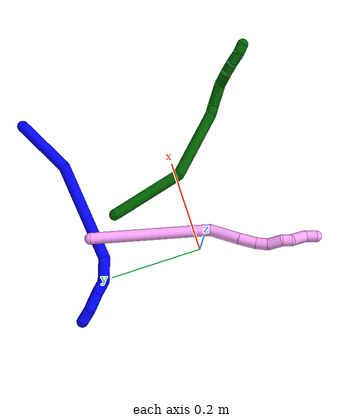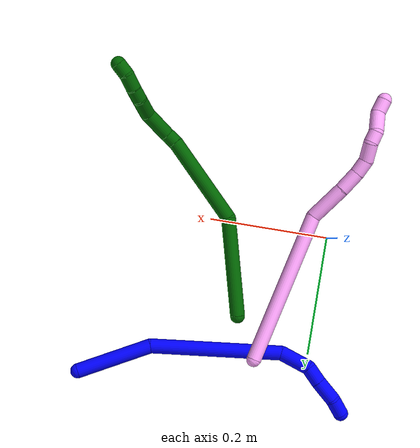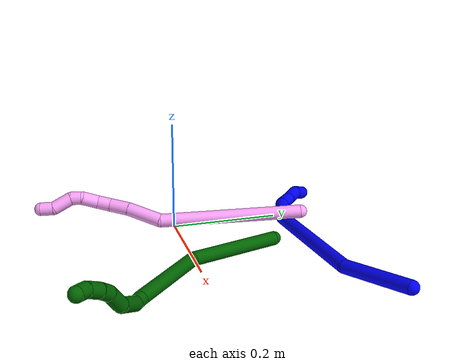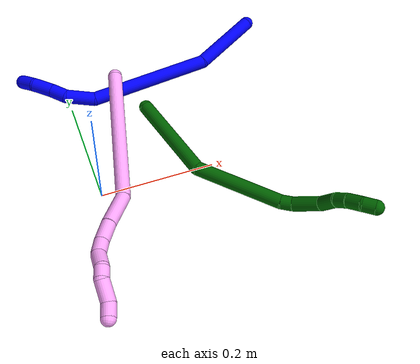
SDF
<sdf version="1.7">
 <world name="default">
  <model name="1">
   <static>0</static>
   <link name="1">
    <collision name="collision-cylinder-e_1_1_4">
     <pose>0.015218 0.031046 0.054394 -0.518642 0.238366 -0.063517</pose>
     <geometry><cylinder><radius>0.0125</radius><length>0.128906</length></cylinder></geometry>
     <surface>
      <friction><ode><mu>1.16</mu><mu2>1.16</mu2><slip1>0</slip1><slip2>0</slip2></ode></friction>
      <contact><ode><kp>1e+06</kp><kd>1</kd><max_vel>0</max_vel><min_depth>0.001</min_depth></ode></contact>
     </surface>
    </collision>
    <visual name="visual-cylinder-e_1_1_4">
     <pose>0.015218 0.031046 0.054394 -0.518642 0.238366 -0.063517</pose>
     <geometry><cylinder><radius>0.0125</radius><length>0.128906</length></cylinder></geometry>
     <material><ambient>0 0 1 1</ambient></material>
    </visual>
    <collision name="collision-cylinder-e_2_4_5">
     <pose>0.034486 0.145693 0.181598 -0.854282 0.036511 -0.01662</pose>
     <geometry><cylinder><radius>0.0125</radius><length>0.221871</length></cylinder></geometry>
     <surface>
      <friction><ode><mu>1.16</mu><mu2>1.16</mu2><slip1>0</slip1><slip2>0</slip2></ode></friction>
      <contact><ode><kp>1e+06</kp><kd>1</kd><max_vel>0</max_vel><min_depth>0.001</min_depth></ode></contact>
     </surface>
    </collision>
    <visual name="visual-cylinder-e_2_4_5">
     <pose>0.034486 0.145693 0.181598 -0.854282 0.036511 -0.01662</pose>
     <geometry><cylinder><radius>0.0125</radius><length>0.221871</length></cylinder></geometry>
     <material><ambient>0 0 1 1</ambient></material>
    </visual>
    <collision name="collision-cylinder-e_3_5_6">
     <pose>0.034801 0.254034 0.261956 -1.27466 -0.14337 0.106234</pose>
     <geometry><cylinder><radius>0.0125</radius><length>0.052269</length></cylinder></geometry>
     <surface>
      <friction><ode><mu>1.16</mu><mu2>1.16</mu2><slip1>0</slip1><slip2>0</slip2></ode></friction>
      <contact><ode><kp>1e+06</kp><kd>1</kd><max_vel>0</max_vel><min_depth>0.001</min_depth></ode></contact>
     </surface>
    </collision>
    <visual name="visual-cylinder-e_3_5_6">
     <pose>0.034801 0.254034 0.261956 -1.27466 -0.14337 0.106234</pose>
     <geometry><cylinder><radius>0.0125</radius><length>0.052269</length></cylinder></geometry>
     <material><ambient>0 0 1 1</ambient></material>
    </visual>
    <collision name="collision-cylinder-e_4_6_7">
     <pose>0.023458 0.291323 0.26916 -1.59819 -0.544969 0.559339</pose>
     <geometry><cylinder><radius>0.0125</radius><length>0.029359</length></cylinder></geometry>
     <surface>
      <friction><ode><mu>1.16</mu><mu2>1.16</mu2><slip1>0</slip1><slip2>0</slip2></ode></friction>
      <contact><ode><kp>1e+06</kp><kd>1</kd><max_vel>0</max_vel><min_depth>0.001</min_depth></ode></contact>
     </surface>
    </collision>
    <visual name="visual-cylinder-e_4_6_7">
     <pose>0.023458 0.291323 0.26916 -1.59819 -0.544969 0.559339</pose>
     <geometry><cylinder><radius>0.0125</radius><length>0.029359</length></cylinder></geometry>
     <material><ambient>0 0 1 1</ambient></material>
    </visual>
    <collision name="collision-cylinder-e_5_7_8">
     <pose>0.006668 0.320493 0.269751 -1.51465 -0.503941 0.477472</pose>
     <geometry><cylinder><radius>0.0125</radius><length>0.038024</length></cylinder></geometry>
     <surface>
      <friction><ode><mu>1.16</mu><mu2>1.16</mu2><slip1>0</slip1><slip2>0</slip2></ode></friction>
      <contact><ode><kp>1e+06</kp><kd>1</kd><max_vel>0</max_vel><min_depth>0.001</min_depth></ode></contact>
     </surface>
    </collision>
    <visual name="visual-cylinder-e_5_7_8">
     <pose>0.006668 0.320493 0.269751 -1.51465 -0.503941 0.477472</pose>
     <geometry><cylinder><radius>0.0125</radius><length>0.038024</length></cylinder></geometry>
     <material><ambient>0 0 1 1</ambient></material>
    </visual>
    <collision name="collision-cylinder-e_6_8_2">
     <pose>-0.013778 0.34661 0.271936 -1.43979 -0.866258 0.770446</pose>
     <geometry><cylinder><radius>0.0125</radius><length>0.029572</length></cylinder></geometry>
     <surface>
      <friction><ode><mu>1.16</mu><mu2>1.16</mu2><slip1>0</slip1><slip2>0</slip2></ode></friction>
      <contact><ode><kp>1e+06</kp><kd>1</kd><max_vel>0</max_vel><min_depth>0.001</min_depth></ode></contact>
     </surface>
    </collision>
    <visual name="visual-cylinder-e_6_8_2">
     <pose>-0.013778 0.34661 0.271936 -1.43979 -0.866258 0.770446</pose>
     <geometry><cylinder><radius>0.0125</radius><length>0.029572</length></cylinder></geometry>
     <material><ambient>0 0 1 1</ambient></material>
    </visual>
    <collision name="collision-sphere-2">
     <pose>-0.025044 0.356104 0.273187 0 -0 0</pose>
     <geometry><sphere><radius>0.0125</radius></sphere></geometry>
     <surface>
      <friction><ode><mu>1.16</mu><mu2>1.16</mu2><slip1>0</slip1><slip2>0</slip2></ode></friction>
      <contact><ode><kp>1e+06</kp><kd>1</kd><max_vel>0</max_vel><min_depth>0.001</min_depth></ode></contact>
     </surface>
    </collision>
    <visual name="visual-sphere-2">
     <pose>-0.025044 0.356104 0.273187 0 -0 0</pose>
     <geometry><sphere><radius>0.0125</radius></sphere></geometry>
     <material><ambient>0 0 1 1</ambient></material>
    </visual>
    <collision name="collision-sphere-4">
     <pose>0.030437 0.062092 0.108788 0 -0 0</pose>
     <geometry><sphere><radius>0.0125</radius></sphere></geometry>
     <surface>
      <friction><ode><mu>1.16</mu><mu2>1.16</mu2><slip1>0</slip1><slip2>0</slip2></ode></friction>
      <contact><ode><kp>1e+06</kp><kd>1</kd><max_vel>0</max_vel><min_depth>0.001</min_depth></ode></contact>
     </surface>
    </collision>
    <visual name="visual-sphere-4">
     <pose>0.030437 0.062092 0.108788 0 -0 0</pose>
     <geometry><sphere><radius>0.0125</radius></sphere></geometry>
     <material><ambient>0 0 1 1</ambient></material>
    </visual>
    <collision name="collision-sphere-1">
     <geometry><sphere><radius>0.0125</radius></sphere></geometry>
     <surface>
      <friction><ode><mu>1.16</mu><mu2>1.16</mu2><slip1>0</slip1><slip2>0</slip2></ode></friction>
      <contact><ode><kp>1e+06</kp><kd>1</kd><max_vel>0</max_vel><min_depth>0.001</min_depth></ode></contact>
     </surface>
    </collision>
    <visual name="visual-sphere-1">
     <geometry><sphere><radius>0.0125</radius></sphere></geometry>
     <material><ambient>0 0 1 1</ambient></material>
    </visual>
    <collision name="collision-sphere-8">
     <pose>-0.002513 0.337115 0.270685 0 -0 0</pose>
     <geometry><sphere><radius>0.0125</radius></sphere></geometry>
     <surface>
      <friction><ode><mu>1.16</mu><mu2>1.16</mu2><slip1>0</slip1><slip2>0</slip2></ode></friction>
      <contact><ode><kp>1e+06</kp><kd>1</kd><max_vel>0</max_vel><min_depth>0.001</min_depth></ode></contact>
     </surface>
    </collision>
    <visual name="visual-sphere-8">
     <pose>-0.002513 0.337115 0.270685 0 -0 0</pose>
     <geometry><sphere><radius>0.0125</radius></sphere></geometry>
     <material><ambient>0 0 1 1</ambient></material>
    </visual>
    <collision name="collision-sphere-5">
     <pose>0.038536 0.229293 0.254407 0 -0 0</pose>
     <geometry><sphere><radius>0.0125</radius></sphere></geometry>
     <surface>
      <friction><ode><mu>1.16</mu><mu2>1.16</mu2><slip1>0</slip1><slip2>0</slip2></ode></friction>
      <contact><ode><kp>1e+06</kp><kd>1</kd><max_vel>0</max_vel><min_depth>0.001</min_depth></ode></contact>
     </surface>
    </collision>
    <visual name="visual-sphere-5">
     <pose>0.038536 0.229293 0.254407 0 -0 0</pose>
     <geometry><sphere><radius>0.0125</radius></sphere></geometry>
     <material><ambient>0 0 1 1</ambient></material>
    </visual>
    <collision name="collision-sphere-6">
     <pose>0.031067 0.278774 0.269504 0 -0 0</pose>
     <geometry><sphere><radius>0.0125</radius></sphere></geometry>
     <surface>
      <friction><ode><mu>1.16</mu><mu2>1.16</mu2><slip1>0</slip1><slip2>0</slip2></ode></friction>
      <contact><ode><kp>1e+06</kp><kd>1</kd><max_vel>0</max_vel><min_depth>0.001</min_depth></ode></contact>
     </surface>
    </collision>
    <visual name="visual-sphere-6">
     <pose>0.031067 0.278774 0.269504 0 -0 0</pose>
     <geometry><sphere><radius>0.0125</radius></sphere></geometry>
     <material><ambient>0 0 1 1</ambient></material>
    </visual>
    <collision name="collision-sphere-7">
     <pose>0.015848 0.303871 0.268817 0 -0 0</pose>
     <geometry><sphere><radius>0.0125</radius></sphere></geometry>
     <surface>
      <friction><ode><mu>1.16</mu><mu2>1.16</mu2><slip1>0</slip1><slip2>0</slip2></ode></friction>
      <contact><ode><kp>1e+06</kp><kd>1</kd><max_vel>0</max_vel><min_depth>0.001</min_depth></ode></contact>
     </surface>
    </collision>
    <visual name="visual-sphere-7">
     <pose>0.015848 0.303871 0.268817 0 -0 0</pose>
     <geometry><sphere><radius>0.0125</radius></sphere></geometry>
     <material><ambient>0 0 1 1</ambient></material>
    </visual>
    <inertial>
     <pose>0.023934 0.161188 0.174392 0 -0 0</pose>
     <mass>0.5</mass>
     <inertia>
      <ixx>0.001097</ixx>
      <ixy>0</ixy>
      <ixz>0</ixz>
      <iyy>0.000781</iyy>
      <iyz>0</iyz>
      <izz>-0.000851</izz>
     </inertia>
    </inertial>
   </link>
   <pose>0.378536 0.2885 0.022335 2.4616 -0.795562 -1.5135</pose>
  </model>
  <model name="4">
   <static>0</static>
   <link name="4">
    <collision name="collision-cylinder-e_1_1_4">
     <pose>-0.016249 -0.039205 -0.122234 2.83122 -0.125915 -0.766114</pose>
     <geometry><cylinder><radius>0.0125</radius><length>0.258783</length></cylinder></geometry>
     <surface>
      <friction><ode><mu>1.16</mu><mu2>1.16</mu2><slip1>0</slip1><slip2>0</slip2></ode></friction>
      <contact><ode><kp>1e+06</kp><kd>1</kd><max_vel>0</max_vel><min_depth>0.001</min_depth></ode></contact>
     </surface>
    </collision>
    <visual name="visual-cylinder-e_1_1_4">
     <pose>-0.016249 -0.039205 -0.122234 2.83122 -0.125915 -0.766114</pose>
     <geometry><cylinder><radius>0.0125</radius><length>0.258783</length></cylinder></geometry>
     <material><ambient>1 0.65098 0.996078 1</ambient></material>
    </visual>
    <collision name="collision-cylinder-e_2_4_5">
     <pose>-0.04977 -0.080146 -0.272494 3.07971 -0.551437 -2.92367</pose>
     <geometry><cylinder><radius>0.0125</radius><length>0.065932</length></cylinder></geometry>
     <surface>
      <friction><ode><mu>1.16</mu><mu2>1.16</mu2><slip1>0</slip1><slip2>0</slip2></ode></friction>
      <contact><ode><kp>1e+06</kp><kd>1</kd><max_vel>0</max_vel><min_depth>0.001</min_depth></ode></contact>
     </surface>
    </collision>
    <visual name="visual-cylinder-e_2_4_5">
     <pose>-0.04977 -0.080146 -0.272494 3.07971 -0.551437 -2.92367</pose>
     <geometry><cylinder><radius>0.0125</radius><length>0.065932</length></cylinder></geometry>
     <material><ambient>1 0.65098 0.996078 1</ambient></material>
    </visual>
    <collision name="collision-cylinder-e_3_5_6">
     <pose>-0.074666 -0.082962 -0.317145 3.07675 -0.429217 -2.84616</pose>
     <geometry><cylinder><radius>0.0125</radius><length>0.036644</length></cylinder></geometry>
     <surface>
      <friction><ode><mu>1.16</mu><mu2>1.16</mu2><slip1>0</slip1><slip2>0</slip2></ode></friction>
      <contact><ode><kp>1e+06</kp><kd>1</kd><max_vel>0</max_vel><min_depth>0.001</min_depth></ode></contact>
     </surface>
    </collision>
    <visual name="visual-cylinder-e_3_5_6">
     <pose>-0.074666 -0.082962 -0.317145 3.07675 -0.429217 -2.84616</pose>
     <geometry><cylinder><radius>0.0125</radius><length>0.036644</length></cylinder></geometry>
     <material><ambient>1 0.65098 0.996078 1</ambient></material>
    </visual>
    <collision name="collision-cylinder-e_4_6_7">
     <pose>-0.087673 -0.086709 -0.345297 2.91416 -0.426904 -2.17172</pose>
     <geometry><cylinder><radius>0.0125</radius><length>0.025997</length></cylinder></geometry>
     <surface>
      <friction><ode><mu>1.16</mu><mu2>1.16</mu2><slip1>0</slip1><slip2>0</slip2></ode></friction>
      <contact><ode><kp>1e+06</kp><kd>1</kd><max_vel>0</max_vel><min_depth>0.001</min_depth></ode></contact>
     </surface>
    </collision>
    <visual name="visual-cylinder-e_4_6_7">
     <pose>-0.087673 -0.086709 -0.345297 2.91416 -0.426904 -2.17172</pose>
     <geometry><cylinder><radius>0.0125</radius><length>0.025997</length></cylinder></geometry>
     <material><ambient>1 0.65098 0.996078 1</ambient></material>
    </visual>
    <collision name="collision-cylinder-e_5_7_8">
     <pose>-0.09884 -0.098396 -0.368182 2.4705 -0.379558 -1.00695</pose>
     <geometry><cylinder><radius>0.0125</radius><length>0.03123</length></cylinder></geometry>
     <surface>
      <friction><ode><mu>1.16</mu><mu2>1.16</mu2><slip1>0</slip1><slip2>0</slip2></ode></friction>
      <contact><ode><kp>1e+06</kp><kd>1</kd><max_vel>0</max_vel><min_depth>0.001</min_depth></ode></contact>
     </surface>
    </collision>
    <visual name="visual-cylinder-e_5_7_8">
     <pose>-0.09884 -0.098396 -0.368182 2.4705 -0.379558 -1.00695</pose>
     <geometry><cylinder><radius>0.0125</radius><length>0.03123</length></cylinder></geometry>
     <material><ambient>1 0.65098 0.996078 1</ambient></material>
    </visual>
    <collision name="collision-cylinder-e_6_8_9">
     <pose>-0.106285 -0.110076 -0.38904 2.86841 -0.166628 -1.09193</pose>
     <geometry><cylinder><radius>0.0125</radius><length>0.020008</length></cylinder></geometry>
     <surface>
      <friction><ode><mu>1.16</mu><mu2>1.16</mu2><slip1>0</slip1><slip2>0</slip2></ode></friction>
      <contact><ode><kp>1e+06</kp><kd>1</kd><max_vel>0</max_vel><min_depth>0.001</min_depth></ode></contact>
     </surface>
    </collision>
    <visual name="visual-cylinder-e_6_8_9">
     <pose>-0.106285 -0.110076 -0.38904 2.86841 -0.166628 -1.09193</pose>
     <geometry><cylinder><radius>0.0125</radius><length>0.020008</length></cylinder></geometry>
     <material><ambient>1 0.65098 0.996078 1</ambient></material>
    </visual>
    <collision name="collision-cylinder-e_7_9_10">
     <pose>-0.10175 -0.117936 -0.415166 2.8386 0.341631 1.69262</pose>
     <geometry><cylinder><radius>0.0125</radius><length>0.036977</length></cylinder></geometry>
     <surface>
      <friction><ode><mu>1.16</mu><mu2>1.16</mu2><slip1>0</slip1><slip2>0</slip2></ode></friction>
      <contact><ode><kp>1e+06</kp><kd>1</kd><max_vel>0</max_vel><min_depth>0.001</min_depth></ode></contact>
     </surface>
    </collision>
    <visual name="visual-cylinder-e_7_9_10">
     <pose>-0.10175 -0.117936 -0.415166 2.8386 0.341631 1.69262</pose>
     <geometry><cylinder><radius>0.0125</radius><length>0.036977</length></cylinder></geometry>
     <material><ambient>1 0.65098 0.996078 1</ambient></material>
    </visual>
    <collision name="collision-cylinder-e_8_10_2">
     <pose>-0.09719 -0.125971 -0.44356 2.90501 -0.134172 -1.02905</pose>
     <geometry><cylinder><radius>0.0125</radius><length>0.02443</length></cylinder></geometry>
     <surface>
      <friction><ode><mu>1.16</mu><mu2>1.16</mu2><slip1>0</slip1><slip2>0</slip2></ode></friction>
      <contact><ode><kp>1e+06</kp><kd>1</kd><max_vel>0</max_vel><min_depth>0.001</min_depth></ode></contact>
     </surface>
    </collision>
    <visual name="visual-cylinder-e_8_10_2">
     <pose>-0.09719 -0.125971 -0.44356 2.90501 -0.134172 -1.02905</pose>
     <geometry><cylinder><radius>0.0125</radius><length>0.02443</length></cylinder></geometry>
     <material><ambient>1 0.65098 0.996078 1</ambient></material>
    </visual>
    <collision name="collision-sphere-2">
     <pose>-0.098824 -0.128808 -0.455328 0 -0 0</pose>
     <geometry><sphere><radius>0.0125</radius></sphere></geometry>
     <surface>
      <friction><ode><mu>1.16</mu><mu2>1.16</mu2><slip1>0</slip1><slip2>0</slip2></ode></friction>
      <contact><ode><kp>1e+06</kp><kd>1</kd><max_vel>0</max_vel><min_depth>0.001</min_depth></ode></contact>
     </surface>
    </collision>
    <visual name="visual-sphere-2">
     <pose>-0.098824 -0.128808 -0.455328 0 -0 0</pose>
     <geometry><sphere><radius>0.0125</radius></sphere></geometry>
     <material><ambient>1 0.65098 0.996078 1</ambient></material>
    </visual>
    <collision name="collision-sphere-10">
     <pose>-0.095556 -0.123134 -0.431792 0 -0 0</pose>
     <geometry><sphere><radius>0.0125</radius></sphere></geometry>
     <surface>
      <friction><ode><mu>1.16</mu><mu2>1.16</mu2><slip1>0</slip1><slip2>0</slip2></ode></friction>
      <contact><ode><kp>1e+06</kp><kd>1</kd><max_vel>0</max_vel><min_depth>0.001</min_depth></ode></contact>
     </surface>
    </collision>
    <visual name="visual-sphere-10">
     <pose>-0.095556 -0.123134 -0.431792 0 -0 0</pose>
     <geometry><sphere><radius>0.0125</radius></sphere></geometry>
     <material><ambient>1 0.65098 0.996078 1</ambient></material>
    </visual>
    <collision name="collision-sphere-9">
     <pose>-0.107944 -0.112738 -0.398539 0 -0 0</pose>
     <geometry><sphere><radius>0.0125</radius></sphere></geometry>
     <surface>
      <friction><ode><mu>1.16</mu><mu2>1.16</mu2><slip1>0</slip1><slip2>0</slip2></ode></friction>
      <contact><ode><kp>1e+06</kp><kd>1</kd><max_vel>0</max_vel><min_depth>0.001</min_depth></ode></contact>
     </surface>
    </collision>
    <visual name="visual-sphere-9">
     <pose>-0.107944 -0.112738 -0.398539 0 -0 0</pose>
     <geometry><sphere><radius>0.0125</radius></sphere></geometry>
     <material><ambient>1 0.65098 0.996078 1</ambient></material>
    </visual>
    <collision name="collision-sphere-4">
     <pose>-0.032499 -0.07841 -0.244468 0 -0 0</pose>
     <geometry><sphere><radius>0.0125</radius></sphere></geometry>
     <surface>
      <friction><ode><mu>1.16</mu><mu2>1.16</mu2><slip1>0</slip1><slip2>0</slip2></ode></friction>
      <contact><ode><kp>1e+06</kp><kd>1</kd><max_vel>0</max_vel><min_depth>0.001</min_depth></ode></contact>
     </surface>
    </collision>
    <visual name="visual-sphere-4">
     <pose>-0.032499 -0.07841 -0.244468 0 -0 0</pose>
     <geometry><sphere><radius>0.0125</radius></sphere></geometry>
     <material><ambient>1 0.65098 0.996078 1</ambient></material>
    </visual>
    <collision name="collision-sphere-1">
     <geometry><sphere><radius>0.0125</radius></sphere></geometry>
     <surface>
      <friction><ode><mu>1.16</mu><mu2>1.16</mu2><slip1>0</slip1><slip2>0</slip2></ode></friction>
      <contact><ode><kp>1e+06</kp><kd>1</kd><max_vel>0</max_vel><min_depth>0.001</min_depth></ode></contact>
     </surface>
    </collision>
    <visual name="visual-sphere-1">
     <geometry><sphere><radius>0.0125</radius></sphere></geometry>
     <material><ambient>1 0.65098 0.996078 1</ambient></material>
    </visual>
    <collision name="collision-sphere-8">
     <pose>-0.104626 -0.107415 -0.37954 0 -0 0</pose>
     <geometry><sphere><radius>0.0125</radius></sphere></geometry>
     <surface>
      <friction><ode><mu>1.16</mu><mu2>1.16</mu2><slip1>0</slip1><slip2>0</slip2></ode></friction>
      <contact><ode><kp>1e+06</kp><kd>1</kd><max_vel>0</max_vel><min_depth>0.001</min_depth></ode></contact>
     </surface>
    </collision>
    <visual name="visual-sphere-8">
     <pose>-0.104626 -0.107415 -0.37954 0 -0 0</pose>
     <geometry><sphere><radius>0.0125</radius></sphere></geometry>
     <material><ambient>1 0.65098 0.996078 1</ambient></material>
    </visual>
    <collision name="collision-sphere-5">
     <pose>-0.067041 -0.081883 -0.300519 0 -0 0</pose>
     <geometry><sphere><radius>0.0125</radius></sphere></geometry>
     <surface>
      <friction><ode><mu>1.16</mu><mu2>1.16</mu2><slip1>0</slip1><slip2>0</slip2></ode></friction>
      <contact><ode><kp>1e+06</kp><kd>1</kd><max_vel>0</max_vel><min_depth>0.001</min_depth></ode></contact>
     </surface>
    </collision>
    <visual name="visual-sphere-5">
     <pose>-0.067041 -0.081883 -0.300519 0 -0 0</pose>
     <geometry><sphere><radius>0.0125</radius></sphere></geometry>
     <material><ambient>1 0.65098 0.996078 1</ambient></material>
    </visual>
    <collision name="collision-sphere-6">
     <pose>-0.082291 -0.084042 -0.33377 0 -0 0</pose>
     <geometry><sphere><radius>0.0125</radius></sphere></geometry>
     <surface>
      <friction><ode><mu>1.16</mu><mu2>1.16</mu2><slip1>0</slip1><slip2>0</slip2></ode></friction>
      <contact><ode><kp>1e+06</kp><kd>1</kd><max_vel>0</max_vel><min_depth>0.001</min_depth></ode></contact>
     </surface>
    </collision>
    <visual name="visual-sphere-6">
     <pose>-0.082291 -0.084042 -0.33377 0 -0 0</pose>
     <geometry><sphere><radius>0.0125</radius></sphere></geometry>
     <material><ambient>1 0.65098 0.996078 1</ambient></material>
    </visual>
    <collision name="collision-sphere-7">
     <pose>-0.093055 -0.089377 -0.356824 0 -0 0</pose>
     <geometry><sphere><radius>0.0125</radius></sphere></geometry>
     <surface>
      <friction><ode><mu>1.16</mu><mu2>1.16</mu2><slip1>0</slip1><slip2>0</slip2></ode></friction>
      <contact><ode><kp>1e+06</kp><kd>1</kd><max_vel>0</max_vel><min_depth>0.001</min_depth></ode></contact>
     </surface>
    </collision>
    <visual name="visual-sphere-7">
     <pose>-0.093055 -0.089377 -0.356824 0 -0 0</pose>
     <geometry><sphere><radius>0.0125</radius></sphere></geometry>
     <material><ambient>1 0.65098 0.996078 1</ambient></material>
    </visual>
    <inertial>
     <pose>-0.047704 -0.066875 -0.231332 0 -0 0</pose>
     <mass>0.5</mass>
     <inertia>
      <ixx>-2e-06</ixx>
      <ixy>0</ixy>
      <ixz>0</ixz>
      <iyy>-0.001947</iyy>
      <iyz>0</iyz>
      <izz>0.000612</izz>
     </inertia>
    </inertial>
   </link>
   <pose>0.090093 0.219228 0.042445 -0.940528 1.01864 0.104747</pose>
  </model>
  <model name="6">
   <static>0</static>
   <link name="6">
    <collision name="collision-cylinder-e_1_1_4">
     <pose>0.01404 -0.029187 0.076637 0.363892 0.169565 0.031269</pose>
     <geometry><cylinder><radius>0.0125</radius><length>0.166399</length></cylinder></geometry>
     <surface>
      <friction><ode><mu>1.16</mu><mu2>1.16</mu2><slip1>0</slip1><slip2>0</slip2></ode></friction>
      <contact><ode><kp>1e+06</kp><kd>1</kd><max_vel>0</max_vel><min_depth>0.001</min_depth></ode></contact>
     </surface>
    </collision>
    <visual name="visual-cylinder-e_1_1_4">
     <pose>0.01404 -0.029187 0.076637 0.363892 0.169565 0.031269</pose>
     <geometry><cylinder><radius>0.0125</radius><length>0.166399</length></cylinder></geometry>
     <material><ambient>0 0.392157 0.003922 1</ambient></material>
    </visual>
    <collision name="collision-cylinder-e_2_4_5">
     <pose>0.041819 -0.045917 0.228713 -0.163649 0.177784 -0.014618</pose>
     <geometry><cylinder><radius>0.0125</radius><length>0.155372</length></cylinder></geometry>
     <surface>
      <friction><ode><mu>1.16</mu><mu2>1.16</mu2><slip1>0</slip1><slip2>0</slip2></ode></friction>
      <contact><ode><kp>1e+06</kp><kd>1</kd><max_vel>0</max_vel><min_depth>0.001</min_depth></ode></contact>
     </surface>
    </collision>
    <visual name="visual-cylinder-e_2_4_5">
     <pose>0.041819 -0.045917 0.228713 -0.163649 0.177784 -0.014618</pose>
     <geometry><cylinder><radius>0.0125</radius><length>0.155372</length></cylinder></geometry>
     <material><ambient>0 0.392157 0.003922 1</ambient></material>
    </visual>
    <collision name="collision-cylinder-e_3_5_6">
     <pose>0.056442 -0.029849 0.313629 -0.364156 0.086991 -0.016026</pose>
     <geometry><cylinder><radius>0.0125</radius><length>0.020359</length></cylinder></geometry>
     <surface>
      <friction><ode><mu>1.16</mu><mu2>1.16</mu2><slip1>0</slip1><slip2>0</slip2></ode></friction>
      <contact><ode><kp>1e+06</kp><kd>1</kd><max_vel>0</max_vel><min_depth>0.001</min_depth></ode></contact>
     </surface>
    </collision>
    <visual name="visual-cylinder-e_3_5_6">
     <pose>0.056442 -0.029849 0.313629 -0.364156 0.086991 -0.016026</pose>
     <geometry><cylinder><radius>0.0125</radius><length>0.020359</length></cylinder></geometry>
     <material><ambient>0 0.392157 0.003922 1</ambient></material>
    </visual>
    <collision name="collision-cylinder-e_4_6_7">
     <pose>0.050746 -0.01912 0.346081 -0.300366 -0.267066 0.040649</pose>
     <geometry><cylinder><radius>0.0125</radius><length>0.049874</length></cylinder></geometry>
     <surface>
      <friction><ode><mu>1.16</mu><mu2>1.16</mu2><slip1>0</slip1><slip2>0</slip2></ode></friction>
      <contact><ode><kp>1e+06</kp><kd>1</kd><max_vel>0</max_vel><min_depth>0.001</min_depth></ode></contact>
     </surface>
    </collision>
    <visual name="visual-cylinder-e_4_6_7">
     <pose>0.050746 -0.01912 0.346081 -0.300366 -0.267066 0.040649</pose>
     <geometry><cylinder><radius>0.0125</radius><length>0.049874</length></cylinder></geometry>
     <material><ambient>0 0.392157 0.003922 1</ambient></material>
    </visual>
    <collision name="collision-cylinder-e_5_7_8">
     <pose>0.031636 -0.011506 0.383064 -0.035507 -0.729401 0.013557</pose>
     <geometry><cylinder><radius>0.0125</radius><length>0.0376</length></cylinder></geometry>
     <surface>
      <friction><ode><mu>1.16</mu><mu2>1.16</mu2><slip1>0</slip1><slip2>0</slip2></ode></friction>
      <contact><ode><kp>1e+06</kp><kd>1</kd><max_vel>0</max_vel><min_depth>0.001</min_depth></ode></contact>
     </surface>
    </collision>
    <visual name="visual-cylinder-e_5_7_8">
     <pose>0.031636 -0.011506 0.383064 -0.035507 -0.729401 0.013557</pose>
     <geometry><cylinder><radius>0.0125</radius><length>0.0376</length></cylinder></geometry>
     <material><ambient>0 0.392157 0.003922 1</ambient></material>
    </visual>
    <collision name="collision-cylinder-e_6_8_9">
     <pose>0.014555 -0.010595 0.407174 -0.040952 -0.423097 0.008796</pose>
     <geometry><cylinder><radius>0.0125</radius><length>0.022177</length></cylinder></geometry>
     <surface>
      <friction><ode><mu>1.16</mu><mu2>1.16</mu2><slip1>0</slip1><slip2>0</slip2></ode></friction>
      <contact><ode><kp>1e+06</kp><kd>1</kd><max_vel>0</max_vel><min_depth>0.001</min_depth></ode></contact>
     </surface>
    </collision>
    <visual name="visual-cylinder-e_6_8_9">
     <pose>0.014555 -0.010595 0.407174 -0.040952 -0.423097 0.008796</pose>
     <geometry><cylinder><radius>0.0125</radius><length>0.022177</length></cylinder></geometry>
     <material><ambient>0 0.392157 0.003922 1</ambient></material>
    </visual>
    <collision name="collision-cylinder-e_7_9_10">
     <pose>0.006445 -0.010221 0.430125 0.003121 -0.270107 -0.000424</pose>
     <geometry><cylinder><radius>0.0125</radius><length>0.026664</length></cylinder></geometry>
     <surface>
      <friction><ode><mu>1.16</mu><mu2>1.16</mu2><slip1>0</slip1><slip2>0</slip2></ode></friction>
      <contact><ode><kp>1e+06</kp><kd>1</kd><max_vel>0</max_vel><min_depth>0.001</min_depth></ode></contact>
     </surface>
    </collision>
    <visual name="visual-cylinder-e_7_9_10">
     <pose>0.006445 -0.010221 0.430125 0.003121 -0.270107 -0.000424</pose>
     <geometry><cylinder><radius>0.0125</radius><length>0.026664</length></cylinder></geometry>
     <material><ambient>0 0.392157 0.003922 1</ambient></material>
    </visual>
    <collision name="collision-cylinder-e_8_10_2">
     <pose>0.003079 -0.00802 0.453514 -0.209493 0.017818 -0.001873</pose>
     <geometry><cylinder><radius>0.0125</radius><length>0.021556</length></cylinder></geometry>
     <surface>
      <friction><ode><mu>1.16</mu><mu2>1.16</mu2><slip1>0</slip1><slip2>0</slip2></ode></friction>
      <contact><ode><kp>1e+06</kp><kd>1</kd><max_vel>0</max_vel><min_depth>0.001</min_depth></ode></contact>
     </surface>
    </collision>
    <visual name="visual-cylinder-e_8_10_2">
     <pose>0.003079 -0.00802 0.453514 -0.209493 0.017818 -0.001873</pose>
     <geometry><cylinder><radius>0.0125</radius><length>0.021556</length></cylinder></geometry>
     <material><ambient>0 0.392157 0.003922 1</ambient></material>
    </visual>
    <collision name="collision-sphere-2">
     <pose>0.003271 -0.005779 0.464055 0 -0 0</pose>
     <geometry><sphere><radius>0.0125</radius></sphere></geometry>
     <surface>
      <friction><ode><mu>1.16</mu><mu2>1.16</mu2><slip1>0</slip1><slip2>0</slip2></ode></friction>
      <contact><ode><kp>1e+06</kp><kd>1</kd><max_vel>0</max_vel><min_depth>0.001</min_depth></ode></contact>
     </surface>
    </collision>
    <visual name="visual-sphere-2">
     <pose>0.003271 -0.005779 0.464055 0 -0 0</pose>
     <geometry><sphere><radius>0.0125</radius></sphere></geometry>
     <material><ambient>0 0.392157 0.003922 1</ambient></material>
    </visual>
    <collision name="collision-sphere-10">
     <pose>0.002887 -0.010261 0.442973 0 -0 0</pose>
     <geometry><sphere><radius>0.0125</radius></sphere></geometry>
     <surface>
      <friction><ode><mu>1.16</mu><mu2>1.16</mu2><slip1>0</slip1><slip2>0</slip2></ode></friction>
      <contact><ode><kp>1e+06</kp><kd>1</kd><max_vel>0</max_vel><min_depth>0.001</min_depth></ode></contact>
     </surface>
    </collision>
    <visual name="visual-sphere-10">
     <pose>0.002887 -0.010261 0.442973 0 -0 0</pose>
     <geometry><sphere><radius>0.0125</radius></sphere></geometry>
     <material><ambient>0 0.392157 0.003922 1</ambient></material>
    </visual>
    <collision name="collision-sphere-9">
     <pose>0.010002 -0.010181 0.417276 0 -0 0</pose>
     <geometry><sphere><radius>0.0125</radius></sphere></geometry>
     <surface>
      <friction><ode><mu>1.16</mu><mu2>1.16</mu2><slip1>0</slip1><slip2>0</slip2></ode></friction>
      <contact><ode><kp>1e+06</kp><kd>1</kd><max_vel>0</max_vel><min_depth>0.001</min_depth></ode></contact>
     </surface>
    </collision>
    <visual name="visual-sphere-9">
     <pose>0.010002 -0.010181 0.417276 0 -0 0</pose>
     <geometry><sphere><radius>0.0125</radius></sphere></geometry>
     <material><ambient>0 0.392157 0.003922 1</ambient></material>
    </visual>
    <collision name="collision-sphere-4">
     <pose>0.02808 -0.058374 0.153273 0 -0 0</pose>
     <geometry><sphere><radius>0.0125</radius></sphere></geometry>
     <surface>
      <friction><ode><mu>1.16</mu><mu2>1.16</mu2><slip1>0</slip1><slip2>0</slip2></ode></friction>
      <contact><ode><kp>1e+06</kp><kd>1</kd><max_vel>0</max_vel><min_depth>0.001</min_depth></ode></contact>
     </surface>
    </collision>
    <visual name="visual-sphere-4">
     <pose>0.02808 -0.058374 0.153273 0 -0 0</pose>
     <geometry><sphere><radius>0.0125</radius></sphere></geometry>
     <material><ambient>0 0.392157 0.003922 1</ambient></material>
    </visual>
    <collision name="collision-sphere-1">
     <geometry><sphere><radius>0.0125</radius></sphere></geometry>
     <surface>
      <friction><ode><mu>1.16</mu><mu2>1.16</mu2><slip1>0</slip1><slip2>0</slip2></ode></friction>
      <contact><ode><kp>1e+06</kp><kd>1</kd><max_vel>0</max_vel><min_depth>0.001</min_depth></ode></contact>
     </surface>
    </collision>
    <visual name="visual-sphere-1">
     <geometry><sphere><radius>0.0125</radius></sphere></geometry>
     <material><ambient>0 0.392157 0.003922 1</ambient></material>
    </visual>
    <collision name="collision-sphere-8">
     <pose>0.019108 -0.011009 0.397072 0 -0 0</pose>
     <geometry><sphere><radius>0.0125</radius></sphere></geometry>
     <surface>
      <friction><ode><mu>1.16</mu><mu2>1.16</mu2><slip1>0</slip1><slip2>0</slip2></ode></friction>
      <contact><ode><kp>1e+06</kp><kd>1</kd><max_vel>0</max_vel><min_depth>0.001</min_depth></ode></contact>
     </surface>
    </collision>
    <visual name="visual-sphere-8">
     <pose>0.019108 -0.011009 0.397072 0 -0 0</pose>
     <geometry><sphere><radius>0.0125</radius></sphere></geometry>
     <material><ambient>0 0.392157 0.003922 1</ambient></material>
    </visual>
    <collision name="collision-sphere-5">
     <pose>0.055558 -0.03346 0.304153 0 -0 0</pose>
     <geometry><sphere><radius>0.0125</radius></sphere></geometry>
     <surface>
      <friction><ode><mu>1.16</mu><mu2>1.16</mu2><slip1>0</slip1><slip2>0</slip2></ode></friction>
      <contact><ode><kp>1e+06</kp><kd>1</kd><max_vel>0</max_vel><min_depth>0.001</min_depth></ode></contact>
     </surface>
    </collision>
    <visual name="visual-sphere-5">
     <pose>0.055558 -0.03346 0.304153 0 -0 0</pose>
     <geometry><sphere><radius>0.0125</radius></sphere></geometry>
     <material><ambient>0 0.392157 0.003922 1</ambient></material>
    </visual>
    <collision name="collision-sphere-6">
     <pose>0.057327 -0.026237 0.323105 0 -0 0</pose>
     <geometry><sphere><radius>0.0125</radius></sphere></geometry>
     <surface>
      <friction><ode><mu>1.16</mu><mu2>1.16</mu2><slip1>0</slip1><slip2>0</slip2></ode></friction>
      <contact><ode><kp>1e+06</kp><kd>1</kd><max_vel>0</max_vel><min_depth>0.001</min_depth></ode></contact>
     </surface>
    </collision>
    <visual name="visual-sphere-6">
     <pose>0.057327 -0.026237 0.323105 0 -0 0</pose>
     <geometry><sphere><radius>0.0125</radius></sphere></geometry>
     <material><ambient>0 0.392157 0.003922 1</ambient></material>
    </visual>
    <collision name="collision-sphere-7">
     <pose>0.044165 -0.012004 0.369056 0 -0 0</pose>
     <geometry><sphere><radius>0.0125</radius></sphere></geometry>
     <surface>
      <friction><ode><mu>1.16</mu><mu2>1.16</mu2><slip1>0</slip1><slip2>0</slip2></ode></friction>
      <contact><ode><kp>1e+06</kp><kd>1</kd><max_vel>0</max_vel><min_depth>0.001</min_depth></ode></contact>
     </surface>
    </collision>
    <visual name="visual-sphere-7">
     <pose>0.044165 -0.012004 0.369056 0 -0 0</pose>
     <geometry><sphere><radius>0.0125</radius></sphere></geometry>
     <material><ambient>0 0.392157 0.003922 1</ambient></material>
    </visual>
    <inertial>
     <pose>0.028529 -0.029331 0.233222 0 -0 0</pose>
     <mass>0.5</mass>
     <inertia><ixx>0.00073</ixx><ixy>0</ixy><ixz>0</ixz><iyy>0.000713</iyy><iyz>0</iyz><izz>4e-06</izz></inertia>
    </inertial>
   </link>
   <pose>0.128226 0.154197 0.012499 -0.009312 1.39312 -0.965891</pose>
  </model>
 </world>
</sdf>
